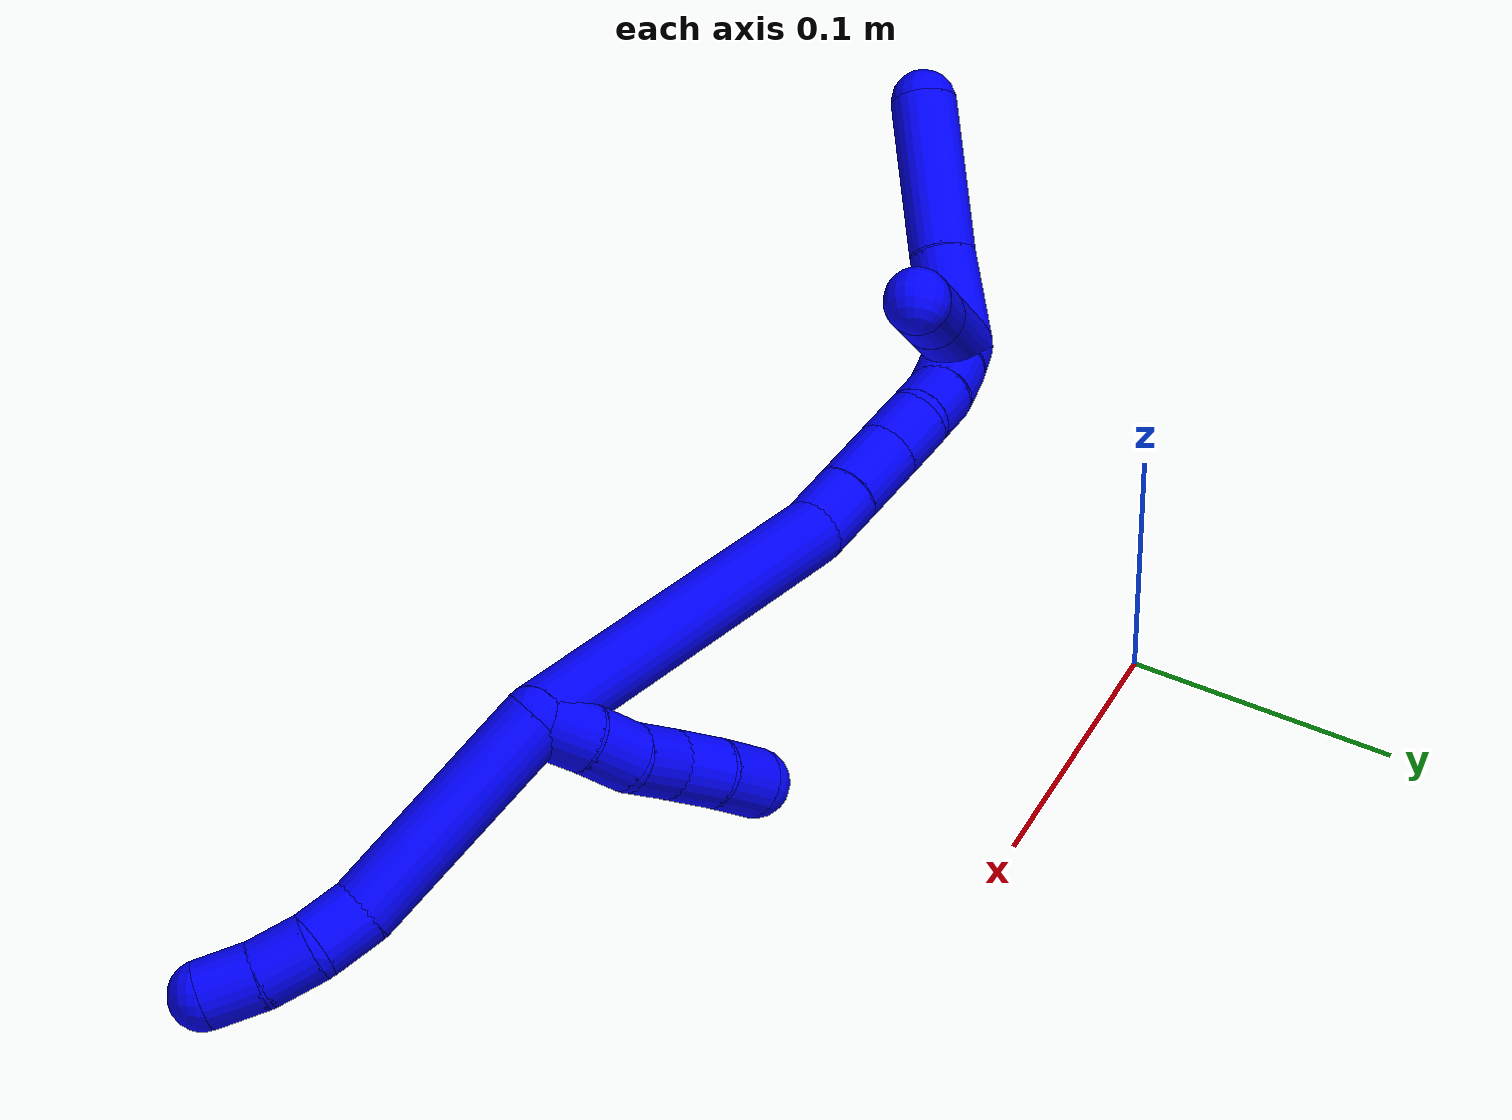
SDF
<sdf version="1.7">
 <world name="default">
  <model name="1">
   <static>0</static>
   <link name="1">
    <collision name="collision-cylinder-e_1_2_8">
     <pose>0.000642 0.02818 0.033808 -0.694857 0.014585 -0.005281</pose>
     <geometry><cylinder><radius>0.0125</radius><length>0.088034</length></cylinder></geometry>
     <surface>
      <friction><ode><mu>1.16</mu><mu2>1.16</mu2><slip1>0</slip1><slip2>0</slip2></ode></friction>
      <contact><ode><kp>1e+06</kp><kd>1</kd><max_vel>0</max_vel><min_depth>0.001</min_depth></ode></contact>
     </surface>
    </collision>
    <visual name="visual-cylinder-e_1_2_8">
     <pose>0.000642 0.02818 0.033808 -0.694857 0.014585 -0.005281</pose>
     <geometry><cylinder><radius>0.0125</radius><length>0.088034</length></cylinder></geometry>
     <material><ambient>0 0 1 1</ambient></material>
    </visual>
    <collision name="collision-cylinder-e_2_8_9">
     <pose>0.00405 0.063169 0.074747 -0.762281 0.273451 -0.110158</pose>
     <geometry><cylinder><radius>0.0125</radius><length>0.020482</length></cylinder></geometry>
     <surface>
      <friction><ode><mu>1.16</mu><mu2>1.16</mu2><slip1>0</slip1><slip2>0</slip2></ode></friction>
      <contact><ode><kp>1e+06</kp><kd>1</kd><max_vel>0</max_vel><min_depth>0.001</min_depth></ode></contact>
     </surface>
    </collision>
    <visual name="visual-cylinder-e_2_8_9">
     <pose>0.00405 0.063169 0.074747 -0.762281 0.273451 -0.110158</pose>
     <geometry><cylinder><radius>0.0125</radius><length>0.020482</length></cylinder></geometry>
     <material><ambient>0 0 1 1</ambient></material>
    </visual>
    <collision name="collision-cylinder-e_3_9_10">
     <pose>0.007851 0.07888 0.087102 -1.04013 0.099994 -0.057293</pose>
     <geometry><cylinder><radius>0.0125</radius><length>0.020744</length></cylinder></geometry>
     <surface>
      <friction><ode><mu>1.16</mu><mu2>1.16</mu2><slip1>0</slip1><slip2>0</slip2></ode></friction>
      <contact><ode><kp>1e+06</kp><kd>1</kd><max_vel>0</max_vel><min_depth>0.001</min_depth></ode></contact>
     </surface>
    </collision>
    <visual name="visual-cylinder-e_3_9_10">
     <pose>0.007851 0.07888 0.087102 -1.04013 0.099994 -0.057293</pose>
     <geometry><cylinder><radius>0.0125</radius><length>0.020744</length></cylinder></geometry>
     <material><ambient>0 0 1 1</ambient></material>
    </visual>
    <collision name="collision-cylinder-e_4_10_6">
     <pose>0.010407 0.097293 0.096165 -1.18717 0.147187 -0.099413</pose>
     <geometry><cylinder><radius>0.0125</radius><length>0.02074</length></cylinder></geometry>
     <surface>
      <friction><ode><mu>1.16</mu><mu2>1.16</mu2><slip1>0</slip1><slip2>0</slip2></ode></friction>
      <contact><ode><kp>1e+06</kp><kd>1</kd><max_vel>0</max_vel><min_depth>0.001</min_depth></ode></contact>
     </surface>
    </collision>
    <visual name="visual-cylinder-e_4_10_6">
     <pose>0.010407 0.097293 0.096165 -1.18717 0.147187 -0.099413</pose>
     <geometry><cylinder><radius>0.0125</radius><length>0.02074</length></cylinder></geometry>
     <material><ambient>0 0 1 1</ambient></material>
    </visual>
    <collision name="collision-cylinder-e_1_2_11">
     <pose>-0.008407 -0.005401 0.000381 1.50029 -0.998659 -0.94048</pose>
     <geometry><cylinder><radius>0.0125</radius><length>0.02</length></cylinder></geometry>
     <surface>
      <friction><ode><mu>1.16</mu><mu2>1.16</mu2><slip1>0</slip1><slip2>0</slip2></ode></friction>
      <contact><ode><kp>1e+06</kp><kd>1</kd><max_vel>0</max_vel><min_depth>0.001</min_depth></ode></contact>
     </surface>
    </collision>
    <visual name="visual-cylinder-e_1_2_11">
     <pose>-0.008407 -0.005401 0.000381 1.50029 -0.998659 -0.94048</pose>
     <geometry><cylinder><radius>0.0125</radius><length>0.02</length></cylinder></geometry>
     <material><ambient>0 0 1 1</ambient></material>
    </visual>
    <collision name="collision-cylinder-e_2_11_12">
     <pose>-0.025829 -0.015125 0.001004 1.51519 -1.12299 -1.07346</pose>
     <geometry><cylinder><radius>0.0125</radius><length>0.02</length></cylinder></geometry>
     <surface>
      <friction><ode><mu>1.16</mu><mu2>1.16</mu2><slip1>0</slip1><slip2>0</slip2></ode></friction>
      <contact><ode><kp>1e+06</kp><kd>1</kd><max_vel>0</max_vel><min_depth>0.001</min_depth></ode></contact>
     </surface>
    </collision>
    <visual name="visual-cylinder-e_2_11_12">
     <pose>-0.025829 -0.015125 0.001004 1.51519 -1.12299 -1.07346</pose>
     <geometry><cylinder><radius>0.0125</radius><length>0.02</length></cylinder></geometry>
     <material><ambient>0 0 1 1</ambient></material>
    </visual>
    <collision name="collision-cylinder-e_3_12_13">
     <pose>-0.043945 -0.023023 -0.000846 2.09995 -1.14385 -1.68573</pose>
     <geometry><cylinder><radius>0.0125</radius><length>0.02</length></cylinder></geometry>
     <surface>
      <friction><ode><mu>1.16</mu><mu2>1.16</mu2><slip1>0</slip1><slip2>0</slip2></ode></friction>
      <contact><ode><kp>1e+06</kp><kd>1</kd><max_vel>0</max_vel><min_depth>0.001</min_depth></ode></contact>
     </surface>
    </collision>
    <visual name="visual-cylinder-e_3_12_13">
     <pose>-0.043945 -0.023023 -0.000846 2.09995 -1.14385 -1.68573</pose>
     <geometry><cylinder><radius>0.0125</radius><length>0.02</length></cylinder></geometry>
     <material><ambient>0 0 1 1</ambient></material>
    </visual>
    <collision name="collision-cylinder-e_4_13_14">
     <pose>-0.061617 -0.031546 -0.004378 1.85433 -1.0293 -1.29182</pose>
     <geometry><cylinder><radius>0.0125</radius><length>0.02</length></cylinder></geometry>
     <surface>
      <friction><ode><mu>1.16</mu><mu2>1.16</mu2><slip1>0</slip1><slip2>0</slip2></ode></friction>
      <contact><ode><kp>1e+06</kp><kd>1</kd><max_vel>0</max_vel><min_depth>0.001</min_depth></ode></contact>
     </surface>
    </collision>
    <visual name="visual-cylinder-e_4_13_14">
     <pose>-0.061617 -0.031546 -0.004378 1.85433 -1.0293 -1.29182</pose>
     <geometry><cylinder><radius>0.0125</radius><length>0.02</length></cylinder></geometry>
     <material><ambient>0 0 1 1</ambient></material>
    </visual>
    <collision name="collision-cylinder-e_5_14_5">
     <pose>-0.079403 -0.040044 -0.007384 1.98575 -1.17237 -1.5888</pose>
     <geometry><cylinder><radius>0.0125</radius><length>0.02</length></cylinder></geometry>
     <surface>
      <friction><ode><mu>1.16</mu><mu2>1.16</mu2><slip1>0</slip1><slip2>0</slip2></ode></friction>
      <contact><ode><kp>1e+06</kp><kd>1</kd><max_vel>0</max_vel><min_depth>0.001</min_depth></ode></contact>
     </surface>
    </collision>
    <visual name="visual-cylinder-e_5_14_5">
     <pose>-0.079403 -0.040044 -0.007384 1.98575 -1.17237 -1.5888</pose>
     <geometry><cylinder><radius>0.0125</radius><length>0.02</length></cylinder></geometry>
     <material><ambient>0 0 1 1</ambient></material>
    </visual>
    <collision name="collision-cylinder-e_1_2_15">
     <pose>-0.059162 -0.021177 -0.058829 2.79605 -0.757774 -2.31537</pose>
     <geometry><cylinder><radius>0.0125</radius><length>0.172156</length></cylinder></geometry>
     <surface>
      <friction><ode><mu>1.16</mu><mu2>1.16</mu2><slip1>0</slip1><slip2>0</slip2></ode></friction>
      <contact><ode><kp>1e+06</kp><kd>1</kd><max_vel>0</max_vel><min_depth>0.001</min_depth></ode></contact>
     </surface>
    </collision>
    <visual name="visual-cylinder-e_1_2_15">
     <pose>-0.059162 -0.021177 -0.058829 2.79605 -0.757774 -2.31537</pose>
     <geometry><cylinder><radius>0.0125</radius><length>0.172156</length></cylinder></geometry>
     <material><ambient>0 0 1 1</ambient></material>
    </visual>
    <collision name="collision-cylinder-e_2_15_16">
     <pose>-0.122927 -0.046395 -0.126678 2.72054 -0.435867 -1.60644</pose>
     <geometry><cylinder><radius>0.0125</radius><length>0.021807</length></cylinder></geometry>
     <surface>
      <friction><ode><mu>1.16</mu><mu2>1.16</mu2><slip1>0</slip1><slip2>0</slip2></ode></friction>
      <contact><ode><kp>1e+06</kp><kd>1</kd><max_vel>0</max_vel><min_depth>0.001</min_depth></ode></contact>
     </surface>
    </collision>
    <visual name="visual-cylinder-e_2_15_16">
     <pose>-0.122927 -0.046395 -0.126678 2.72054 -0.435867 -1.60644</pose>
     <geometry><cylinder><radius>0.0125</radius><length>0.021807</length></cylinder></geometry>
     <material><ambient>0 0 1 1</ambient></material>
    </visual>
    <collision name="collision-cylinder-e_3_16_17">
     <pose>-0.133343 -0.054897 -0.146397 2.74638 -0.464814 -1.73732</pose>
     <geometry><cylinder><radius>0.0125</radius><length>0.025934</length></cylinder></geometry>
     <surface>
      <friction><ode><mu>1.16</mu><mu2>1.16</mu2><slip1>0</slip1><slip2>0</slip2></ode></friction>
      <contact><ode><kp>1e+06</kp><kd>1</kd><max_vel>0</max_vel><min_depth>0.001</min_depth></ode></contact>
     </surface>
    </collision>
    <visual name="visual-cylinder-e_3_16_17">
     <pose>-0.133343 -0.054897 -0.146397 2.74638 -0.464814 -1.73732</pose>
     <geometry><cylinder><radius>0.0125</radius><length>0.025934</length></cylinder></geometry>
     <material><ambient>0 0 1 1</ambient></material>
    </visual>
    <collision name="collision-cylinder-e_4_17_18">
     <pose>-0.143442 -0.062969 -0.165382 2.73089 -0.442771 -1.64822</pose>
     <geometry><cylinder><radius>0.0125</radius><length>0.020008</length></cylinder></geometry>
     <surface>
      <friction><ode><mu>1.16</mu><mu2>1.16</mu2><slip1>0</slip1><slip2>0</slip2></ode></friction>
      <contact><ode><kp>1e+06</kp><kd>1</kd><max_vel>0</max_vel><min_depth>0.001</min_depth></ode></contact>
     </surface>
    </collision>
    <visual name="visual-cylinder-e_4_17_18">
     <pose>-0.143442 -0.062969 -0.165382 2.73089 -0.442771 -1.64822</pose>
     <geometry><cylinder><radius>0.0125</radius><length>0.020008</length></cylinder></geometry>
     <material><ambient>0 0 1 1</ambient></material>
    </visual>
    <collision name="collision-cylinder-e_5_18_19">
     <pose>-0.154124 -0.06773 -0.181325 2.99218 -0.690449 -2.73122</pose>
     <geometry><cylinder><radius>0.0125</radius><length>0.020083</length></cylinder></geometry>
     <surface>
      <friction><ode><mu>1.16</mu><mu2>1.16</mu2><slip1>0</slip1><slip2>0</slip2></ode></friction>
      <contact><ode><kp>1e+06</kp><kd>1</kd><max_vel>0</max_vel><min_depth>0.001</min_depth></ode></contact>
     </surface>
    </collision>
    <visual name="visual-cylinder-e_5_18_19">
     <pose>-0.154124 -0.06773 -0.181325 2.99218 -0.690449 -2.73122</pose>
     <geometry><cylinder><radius>0.0125</radius><length>0.020083</length></cylinder></geometry>
     <material><ambient>0 0 1 1</ambient></material>
    </visual>
    <collision name="collision-cylinder-e_6_19_20">
     <pose>-0.1662 -0.068609 -0.19721 -3.10829 -0.60393 3.03477</pose>
     <geometry><cylinder><radius>0.0125</radius><length>0.020007</length></cylinder></geometry>
     <surface>
      <friction><ode><mu>1.16</mu><mu2>1.16</mu2><slip1>0</slip1><slip2>0</slip2></ode></friction>
      <contact><ode><kp>1e+06</kp><kd>1</kd><max_vel>0</max_vel><min_depth>0.001</min_depth></ode></contact>
     </surface>
    </collision>
    <visual name="visual-cylinder-e_6_19_20">
     <pose>-0.1662 -0.068609 -0.19721 -3.10829 -0.60393 3.03477</pose>
     <geometry><cylinder><radius>0.0125</radius><length>0.020007</length></cylinder></geometry>
     <material><ambient>0 0 1 1</ambient></material>
    </visual>
    <collision name="collision-cylinder-e_7_20_1">
     <pose>-0.178205 -0.066744 -0.213023 -2.93491 -0.684512 2.57506</pose>
     <geometry><cylinder><radius>0.0125</radius><length>0.020005</length></cylinder></geometry>
     <surface>
      <friction><ode><mu>1.16</mu><mu2>1.16</mu2><slip1>0</slip1><slip2>0</slip2></ode></friction>
      <contact><ode><kp>1e+06</kp><kd>1</kd><max_vel>0</max_vel><min_depth>0.001</min_depth></ode></contact>
     </surface>
    </collision>
    <visual name="visual-cylinder-e_7_20_1">
     <pose>-0.178205 -0.066744 -0.213023 -2.93491 -0.684512 2.57506</pose>
     <geometry><cylinder><radius>0.0125</radius><length>0.020005</length></cylinder></geometry>
     <material><ambient>0 0 1 1</ambient></material>
    </visual>
    <collision name="collision-cylinder-e_1_1_21">
     <pose>-0.181305 -0.061295 -0.23814 -2.92494 0.177706 -1.37264</pose>
     <geometry><cylinder><radius>0.0125</radius><length>0.036479</length></cylinder></geometry>
     <surface>
      <friction><ode><mu>1.16</mu><mu2>1.16</mu2><slip1>0</slip1><slip2>0</slip2></ode></friction>
      <contact><ode><kp>1e+06</kp><kd>1</kd><max_vel>0</max_vel><min_depth>0.001</min_depth></ode></contact>
     </surface>
    </collision>
    <visual name="visual-cylinder-e_1_1_21">
     <pose>-0.181305 -0.061295 -0.23814 -2.92494 0.177706 -1.37264</pose>
     <geometry><cylinder><radius>0.0125</radius><length>0.036479</length></cylinder></geometry>
     <material><ambient>0 0 1 1</ambient></material>
    </visual>
    <collision name="collision-cylinder-e_2_21_4">
     <pose>-0.174578 -0.051958 -0.28676 -2.96717 0.110499 -1.12802</pose>
     <geometry><cylinder><radius>0.0125</radius><length>0.063521</length></cylinder></geometry>
     <surface>
      <friction><ode><mu>1.16</mu><mu2>1.16</mu2><slip1>0</slip1><slip2>0</slip2></ode></friction>
      <contact><ode><kp>1e+06</kp><kd>1</kd><max_vel>0</max_vel><min_depth>0.001</min_depth></ode></contact>
     </surface>
    </collision>
    <visual name="visual-cylinder-e_2_21_4">
     <pose>-0.174578 -0.051958 -0.28676 -2.96717 0.110499 -1.12802</pose>
     <geometry><cylinder><radius>0.0125</radius><length>0.063521</length></cylinder></geometry>
     <material><ambient>0 0 1 1</ambient></material>
    </visual>
    <collision name="collision-cylinder-e_1_1_22">
     <pose>-0.152749 -0.07224 -0.21138 0.654836 1.21986 0.46607</pose>
     <geometry><cylinder><radius>0.0125</radius><length>0.067686</length></cylinder></geometry>
     <surface>
      <friction><ode><mu>1.16</mu><mu2>1.16</mu2><slip1>0</slip1><slip2>0</slip2></ode></friction>
      <contact><ode><kp>1e+06</kp><kd>1</kd><max_vel>0</max_vel><min_depth>0.001</min_depth></ode></contact>
     </surface>
    </collision>
    <visual name="visual-cylinder-e_1_1_22">
     <pose>-0.152749 -0.07224 -0.21138 0.654836 1.21986 0.46607</pose>
     <geometry><cylinder><radius>0.0125</radius><length>0.067686</length></cylinder></geometry>
     <material><ambient>0 0 1 1</ambient></material>
    </visual>
    <collision name="collision-cylinder-e_2_22_3">
     <pose>-0.105827 -0.082756 -0.197679 0.654259 1.2144 0.463038</pose>
     <geometry><cylinder><radius>0.0125</radius><length>0.032314</length></cylinder></geometry>
     <surface>
      <friction><ode><mu>1.16</mu><mu2>1.16</mu2><slip1>0</slip1><slip2>0</slip2></ode></friction>
      <contact><ode><kp>1e+06</kp><kd>1</kd><max_vel>0</max_vel><min_depth>0.001</min_depth></ode></contact>
     </surface>
    </collision>
    <visual name="visual-cylinder-e_2_22_3">
     <pose>-0.105827 -0.082756 -0.197679 0.654259 1.2144 0.463038</pose>
     <geometry><cylinder><radius>0.0125</radius><length>0.032314</length></cylinder></geometry>
     <material><ambient>0 0 1 1</ambient></material>
    </visual>
    <collision name="collision-sphere-3">
     <pose>-0.090685 -0.086187 -0.193206 0 -0 0</pose>
     <geometry><sphere><radius>0.0125</radius></sphere></geometry>
     <surface>
      <friction><ode><mu>1.16</mu><mu2>1.16</mu2><slip1>0</slip1><slip2>0</slip2></ode></friction>
      <contact><ode><kp>1e+06</kp><kd>1</kd><max_vel>0</max_vel><min_depth>0.001</min_depth></ode></contact>
     </surface>
    </collision>
    <visual name="visual-sphere-3">
     <pose>-0.090685 -0.086187 -0.193206 0 -0 0</pose>
     <geometry><sphere><radius>0.0125</radius></sphere></geometry>
     <material><ambient>0 0 1 1</ambient></material>
    </visual>
    <collision name="collision-sphere-22">
     <pose>-0.120969 -0.079325 -0.202152 0 -0 0</pose>
     <geometry><sphere><radius>0.0125</radius></sphere></geometry>
     <surface>
      <friction><ode><mu>1.16</mu><mu2>1.16</mu2><slip1>0</slip1><slip2>0</slip2></ode></friction>
      <contact><ode><kp>1e+06</kp><kd>1</kd><max_vel>0</max_vel><min_depth>0.001</min_depth></ode></contact>
     </surface>
    </collision>
    <visual name="visual-sphere-22">
     <pose>-0.120969 -0.079325 -0.202152 0 -0 0</pose>
     <geometry><sphere><radius>0.0125</radius></sphere></geometry>
     <material><ambient>0 0 1 1</ambient></material>
    </visual>
    <collision name="collision-sphere-4">
     <pose>-0.171076 -0.04648 -0.317848 0 -0 0</pose>
     <geometry><sphere><radius>0.0125</radius></sphere></geometry>
     <surface>
      <friction><ode><mu>1.16</mu><mu2>1.16</mu2><slip1>0</slip1><slip2>0</slip2></ode></friction>
      <contact><ode><kp>1e+06</kp><kd>1</kd><max_vel>0</max_vel><min_depth>0.001</min_depth></ode></contact>
     </surface>
    </collision>
    <visual name="visual-sphere-4">
     <pose>-0.171076 -0.04648 -0.317848 0 -0 0</pose>
     <geometry><sphere><radius>0.0125</radius></sphere></geometry>
     <material><ambient>0 0 1 1</ambient></material>
    </visual>
    <collision name="collision-sphere-21">
     <pose>-0.178081 -0.057436 -0.255673 0 -0 0</pose>
     <geometry><sphere><radius>0.0125</radius></sphere></geometry>
     <surface>
      <friction><ode><mu>1.16</mu><mu2>1.16</mu2><slip1>0</slip1><slip2>0</slip2></ode></friction>
      <contact><ode><kp>1e+06</kp><kd>1</kd><max_vel>0</max_vel><min_depth>0.001</min_depth></ode></contact>
     </surface>
    </collision>
    <visual name="visual-sphere-21">
     <pose>-0.178081 -0.057436 -0.255673 0 -0 0</pose>
     <geometry><sphere><radius>0.0125</radius></sphere></geometry>
     <material><ambient>0 0 1 1</ambient></material>
    </visual>
    <collision name="collision-sphere-1">
     <pose>-0.184529 -0.065154 -0.220607 0 -0 0</pose>
     <geometry><sphere><radius>0.0125</radius></sphere></geometry>
     <surface>
      <friction><ode><mu>1.16</mu><mu2>1.16</mu2><slip1>0</slip1><slip2>0</slip2></ode></friction>
      <contact><ode><kp>1e+06</kp><kd>1</kd><max_vel>0</max_vel><min_depth>0.001</min_depth></ode></contact>
     </surface>
    </collision>
    <visual name="visual-sphere-1">
     <pose>-0.184529 -0.065154 -0.220607 0 -0 0</pose>
     <geometry><sphere><radius>0.0125</radius></sphere></geometry>
     <material><ambient>0 0 1 1</ambient></material>
    </visual>
    <collision name="collision-sphere-11">
     <pose>-0.016815 -0.010802 0.000763 0 -0 0</pose>
     <geometry><sphere><radius>0.0125</radius></sphere></geometry>
     <surface>
      <friction><ode><mu>1.16</mu><mu2>1.16</mu2><slip1>0</slip1><slip2>0</slip2></ode></friction>
      <contact><ode><kp>1e+06</kp><kd>1</kd><max_vel>0</max_vel><min_depth>0.001</min_depth></ode></contact>
     </surface>
    </collision>
    <visual name="visual-sphere-11">
     <pose>-0.016815 -0.010802 0.000763 0 -0 0</pose>
     <geometry><sphere><radius>0.0125</radius></sphere></geometry>
     <material><ambient>0 0 1 1</ambient></material>
    </visual>
    <collision name="collision-sphere-6">
     <pose>0.011928 0.106805 0.100004 0 -0 0</pose>
     <geometry><sphere><radius>0.0125</radius></sphere></geometry>
     <surface>
      <friction><ode><mu>1.16</mu><mu2>1.16</mu2><slip1>0</slip1><slip2>0</slip2></ode></friction>
      <contact><ode><kp>1e+06</kp><kd>1</kd><max_vel>0</max_vel><min_depth>0.001</min_depth></ode></contact>
     </surface>
    </collision>
    <visual name="visual-sphere-6">
     <pose>0.011928 0.106805 0.100004 0 -0 0</pose>
     <geometry><sphere><radius>0.0125</radius></sphere></geometry>
     <material><ambient>0 0 1 1</ambient></material>
    </visual>
    <collision name="collision-sphere-10">
     <pose>0.008886 0.087781 0.092326 0 -0 0</pose>
     <geometry><sphere><radius>0.0125</radius></sphere></geometry>
     <surface>
      <friction><ode><mu>1.16</mu><mu2>1.16</mu2><slip1>0</slip1><slip2>0</slip2></ode></friction>
      <contact><ode><kp>1e+06</kp><kd>1</kd><max_vel>0</max_vel><min_depth>0.001</min_depth></ode></contact>
     </surface>
    </collision>
    <visual name="visual-sphere-10">
     <pose>0.008886 0.087781 0.092326 0 -0 0</pose>
     <geometry><sphere><radius>0.0125</radius></sphere></geometry>
     <material><ambient>0 0 1 1</ambient></material>
    </visual>
    <collision name="collision-sphere-9">
     <pose>0.006815 0.069979 0.081879 0 -0 0</pose>
     <geometry><sphere><radius>0.0125</radius></sphere></geometry>
     <surface>
      <friction><ode><mu>1.16</mu><mu2>1.16</mu2><slip1>0</slip1><slip2>0</slip2></ode></friction>
      <contact><ode><kp>1e+06</kp><kd>1</kd><max_vel>0</max_vel><min_depth>0.001</min_depth></ode></contact>
     </surface>
    </collision>
    <visual name="visual-sphere-9">
     <pose>0.006815 0.069979 0.081879 0 -0 0</pose>
     <geometry><sphere><radius>0.0125</radius></sphere></geometry>
     <material><ambient>0 0 1 1</ambient></material>
    </visual>
    <collision name="collision-sphere-2">
     <geometry><sphere><radius>0.0125</radius></sphere></geometry>
     <surface>
      <friction><ode><mu>1.16</mu><mu2>1.16</mu2><slip1>0</slip1><slip2>0</slip2></ode></friction>
      <contact><ode><kp>1e+06</kp><kd>1</kd><max_vel>0</max_vel><min_depth>0.001</min_depth></ode></contact>
     </surface>
    </collision>
    <visual name="visual-sphere-2">
     <geometry><sphere><radius>0.0125</radius></sphere></geometry>
     <material><ambient>0 0 1 1</ambient></material>
    </visual>
    <collision name="collision-sphere-19">
     <pose>-0.160519 -0.068883 -0.18898 0 -0 0</pose>
     <geometry><sphere><radius>0.0125</radius></sphere></geometry>
     <surface>
      <friction><ode><mu>1.16</mu><mu2>1.16</mu2><slip1>0</slip1><slip2>0</slip2></ode></friction>
      <contact><ode><kp>1e+06</kp><kd>1</kd><max_vel>0</max_vel><min_depth>0.001</min_depth></ode></contact>
     </surface>
    </collision>
    <visual name="visual-sphere-19">
     <pose>-0.160519 -0.068883 -0.18898 0 -0 0</pose>
     <geometry><sphere><radius>0.0125</radius></sphere></geometry>
     <material><ambient>0 0 1 1</ambient></material>
    </visual>
    <collision name="collision-sphere-8">
     <pose>0.001284 0.05636 0.067616 0 -0 0</pose>
     <geometry><sphere><radius>0.0125</radius></sphere></geometry>
     <surface>
      <friction><ode><mu>1.16</mu><mu2>1.16</mu2><slip1>0</slip1><slip2>0</slip2></ode></friction>
      <contact><ode><kp>1e+06</kp><kd>1</kd><max_vel>0</max_vel><min_depth>0.001</min_depth></ode></contact>
     </surface>
    </collision>
    <visual name="visual-sphere-8">
     <pose>0.001284 0.05636 0.067616 0 -0 0</pose>
     <geometry><sphere><radius>0.0125</radius></sphere></geometry>
     <material><ambient>0 0 1 1</ambient></material>
    </visual>
    <collision name="collision-sphere-12">
     <pose>-0.034843 -0.019448 0.001244 0 -0 0</pose>
     <geometry><sphere><radius>0.0125</radius></sphere></geometry>
     <surface>
      <friction><ode><mu>1.16</mu><mu2>1.16</mu2><slip1>0</slip1><slip2>0</slip2></ode></friction>
      <contact><ode><kp>1e+06</kp><kd>1</kd><max_vel>0</max_vel><min_depth>0.001</min_depth></ode></contact>
     </surface>
    </collision>
    <visual name="visual-sphere-12">
     <pose>-0.034843 -0.019448 0.001244 0 -0 0</pose>
     <geometry><sphere><radius>0.0125</radius></sphere></geometry>
     <material><ambient>0 0 1 1</ambient></material>
    </visual>
    <collision name="collision-sphere-13">
     <pose>-0.053048 -0.026597 -0.002937 0 -0 0</pose>
     <geometry><sphere><radius>0.0125</radius></sphere></geometry>
     <surface>
      <friction><ode><mu>1.16</mu><mu2>1.16</mu2><slip1>0</slip1><slip2>0</slip2></ode></friction>
      <contact><ode><kp>1e+06</kp><kd>1</kd><max_vel>0</max_vel><min_depth>0.001</min_depth></ode></contact>
     </surface>
    </collision>
    <visual name="visual-sphere-13">
     <pose>-0.053048 -0.026597 -0.002937 0 -0 0</pose>
     <geometry><sphere><radius>0.0125</radius></sphere></geometry>
     <material><ambient>0 0 1 1</ambient></material>
    </visual>
    <collision name="collision-sphere-14">
     <pose>-0.070186 -0.036494 -0.00582 0 -0 0</pose>
     <geometry><sphere><radius>0.0125</radius></sphere></geometry>
     <surface>
      <friction><ode><mu>1.16</mu><mu2>1.16</mu2><slip1>0</slip1><slip2>0</slip2></ode></friction>
      <contact><ode><kp>1e+06</kp><kd>1</kd><max_vel>0</max_vel><min_depth>0.001</min_depth></ode></contact>
     </surface>
    </collision>
    <visual name="visual-sphere-14">
     <pose>-0.070186 -0.036494 -0.00582 0 -0 0</pose>
     <geometry><sphere><radius>0.0125</radius></sphere></geometry>
     <material><ambient>0 0 1 1</ambient></material>
    </visual>
    <collision name="collision-sphere-5">
     <pose>-0.08862 -0.043595 -0.008948 0 -0 0</pose>
     <geometry><sphere><radius>0.0125</radius></sphere></geometry>
     <surface>
      <friction><ode><mu>1.16</mu><mu2>1.16</mu2><slip1>0</slip1><slip2>0</slip2></ode></friction>
      <contact><ode><kp>1e+06</kp><kd>1</kd><max_vel>0</max_vel><min_depth>0.001</min_depth></ode></contact>
     </surface>
    </collision>
    <visual name="visual-sphere-5">
     <pose>-0.08862 -0.043595 -0.008948 0 -0 0</pose>
     <geometry><sphere><radius>0.0125</radius></sphere></geometry>
     <material><ambient>0 0 1 1</ambient></material>
    </visual>
    <collision name="collision-sphere-15">
     <pose>-0.118324 -0.042355 -0.117657 0 -0 0</pose>
     <geometry><sphere><radius>0.0125</radius></sphere></geometry>
     <surface>
      <friction><ode><mu>1.16</mu><mu2>1.16</mu2><slip1>0</slip1><slip2>0</slip2></ode></friction>
      <contact><ode><kp>1e+06</kp><kd>1</kd><max_vel>0</max_vel><min_depth>0.001</min_depth></ode></contact>
     </surface>
    </collision>
    <visual name="visual-sphere-15">
     <pose>-0.118324 -0.042355 -0.117657 0 -0 0</pose>
     <geometry><sphere><radius>0.0125</radius></sphere></geometry>
     <material><ambient>0 0 1 1</ambient></material>
    </visual>
    <collision name="collision-sphere-16">
     <pose>-0.127531 -0.050435 -0.135699 0 -0 0</pose>
     <geometry><sphere><radius>0.0125</radius></sphere></geometry>
     <surface>
      <friction><ode><mu>1.16</mu><mu2>1.16</mu2><slip1>0</slip1><slip2>0</slip2></ode></friction>
      <contact><ode><kp>1e+06</kp><kd>1</kd><max_vel>0</max_vel><min_depth>0.001</min_depth></ode></contact>
     </surface>
    </collision>
    <visual name="visual-sphere-16">
     <pose>-0.127531 -0.050435 -0.135699 0 -0 0</pose>
     <geometry><sphere><radius>0.0125</radius></sphere></geometry>
     <material><ambient>0 0 1 1</ambient></material>
    </visual>
    <collision name="collision-sphere-17">
     <pose>-0.139156 -0.05936 -0.157094 0 -0 0</pose>
     <geometry><sphere><radius>0.0125</radius></sphere></geometry>
     <surface>
      <friction><ode><mu>1.16</mu><mu2>1.16</mu2><slip1>0</slip1><slip2>0</slip2></ode></friction>
      <contact><ode><kp>1e+06</kp><kd>1</kd><max_vel>0</max_vel><min_depth>0.001</min_depth></ode></contact>
     </surface>
    </collision>
    <visual name="visual-sphere-17">
     <pose>-0.139156 -0.05936 -0.157094 0 -0 0</pose>
     <geometry><sphere><radius>0.0125</radius></sphere></geometry>
     <material><ambient>0 0 1 1</ambient></material>
    </visual>
    <collision name="collision-sphere-18">
     <pose>-0.147728 -0.066578 -0.173669 0 -0 0</pose>
     <geometry><sphere><radius>0.0125</radius></sphere></geometry>
     <surface>
      <friction><ode><mu>1.16</mu><mu2>1.16</mu2><slip1>0</slip1><slip2>0</slip2></ode></friction>
      <contact><ode><kp>1e+06</kp><kd>1</kd><max_vel>0</max_vel><min_depth>0.001</min_depth></ode></contact>
     </surface>
    </collision>
    <visual name="visual-sphere-18">
     <pose>-0.147728 -0.066578 -0.173669 0 -0 0</pose>
     <geometry><sphere><radius>0.0125</radius></sphere></geometry>
     <material><ambient>0 0 1 1</ambient></material>
    </visual>
    <collision name="collision-sphere-20">
     <pose>-0.17188 -0.068334 -0.205439 0 -0 0</pose>
     <geometry><sphere><radius>0.0125</radius></sphere></geometry>
     <surface>
      <friction><ode><mu>1.16</mu><mu2>1.16</mu2><slip1>0</slip1><slip2>0</slip2></ode></friction>
      <contact><ode><kp>1e+06</kp><kd>1</kd><max_vel>0</max_vel><min_depth>0.001</min_depth></ode></contact>
     </surface>
    </collision>
    <visual name="visual-sphere-20">
     <pose>-0.17188 -0.068334 -0.205439 0 -0 0</pose>
     <geometry><sphere><radius>0.0125</radius></sphere></geometry>
     <material><ambient>0 0 1 1</ambient></material>
    </visual>
    <inertial>
     <pose>-0.086009 -0.025845 -0.095144 0 -0 0</pose>
     <mass>0.75</mass>
     <inertia>
      <ixx>-0.000402</ixx>
      <ixy>0</ixy>
      <ixz>0</ixz>
      <iyy>0.000169</iyy>
      <iyz>0</iyz>
      <izz>0.000327</izz>
     </inertia>
    </inertial>
   </link>
   <pose>0.181156 -0.142925 0.072046 -2.47162 -1.05894 -0.371353</pose>
  </model>
 </world>
</sdf>
